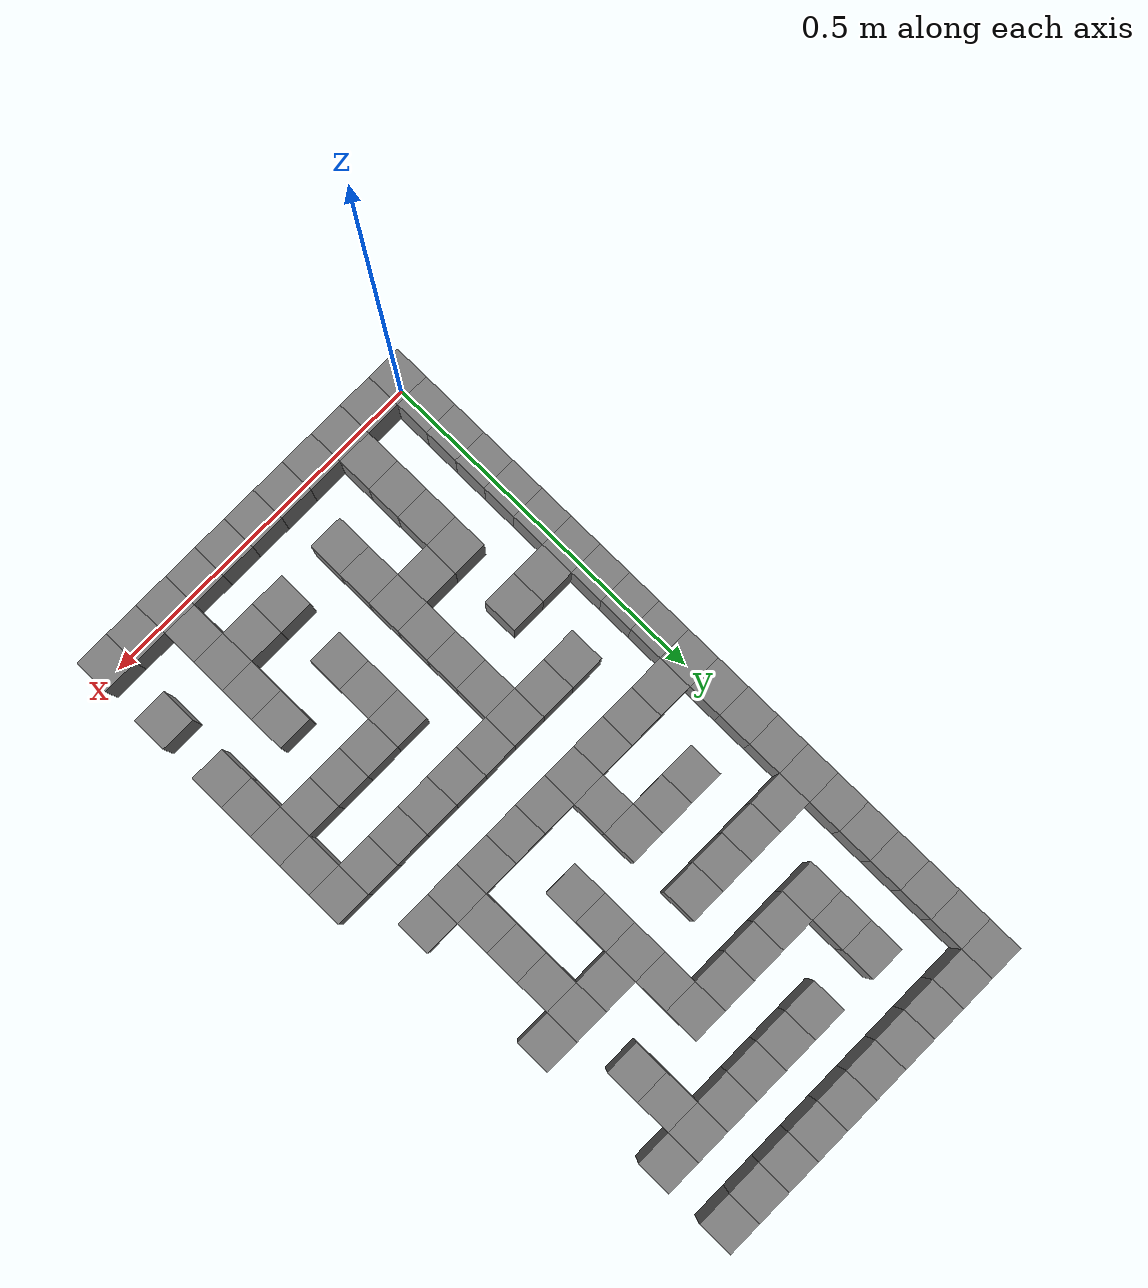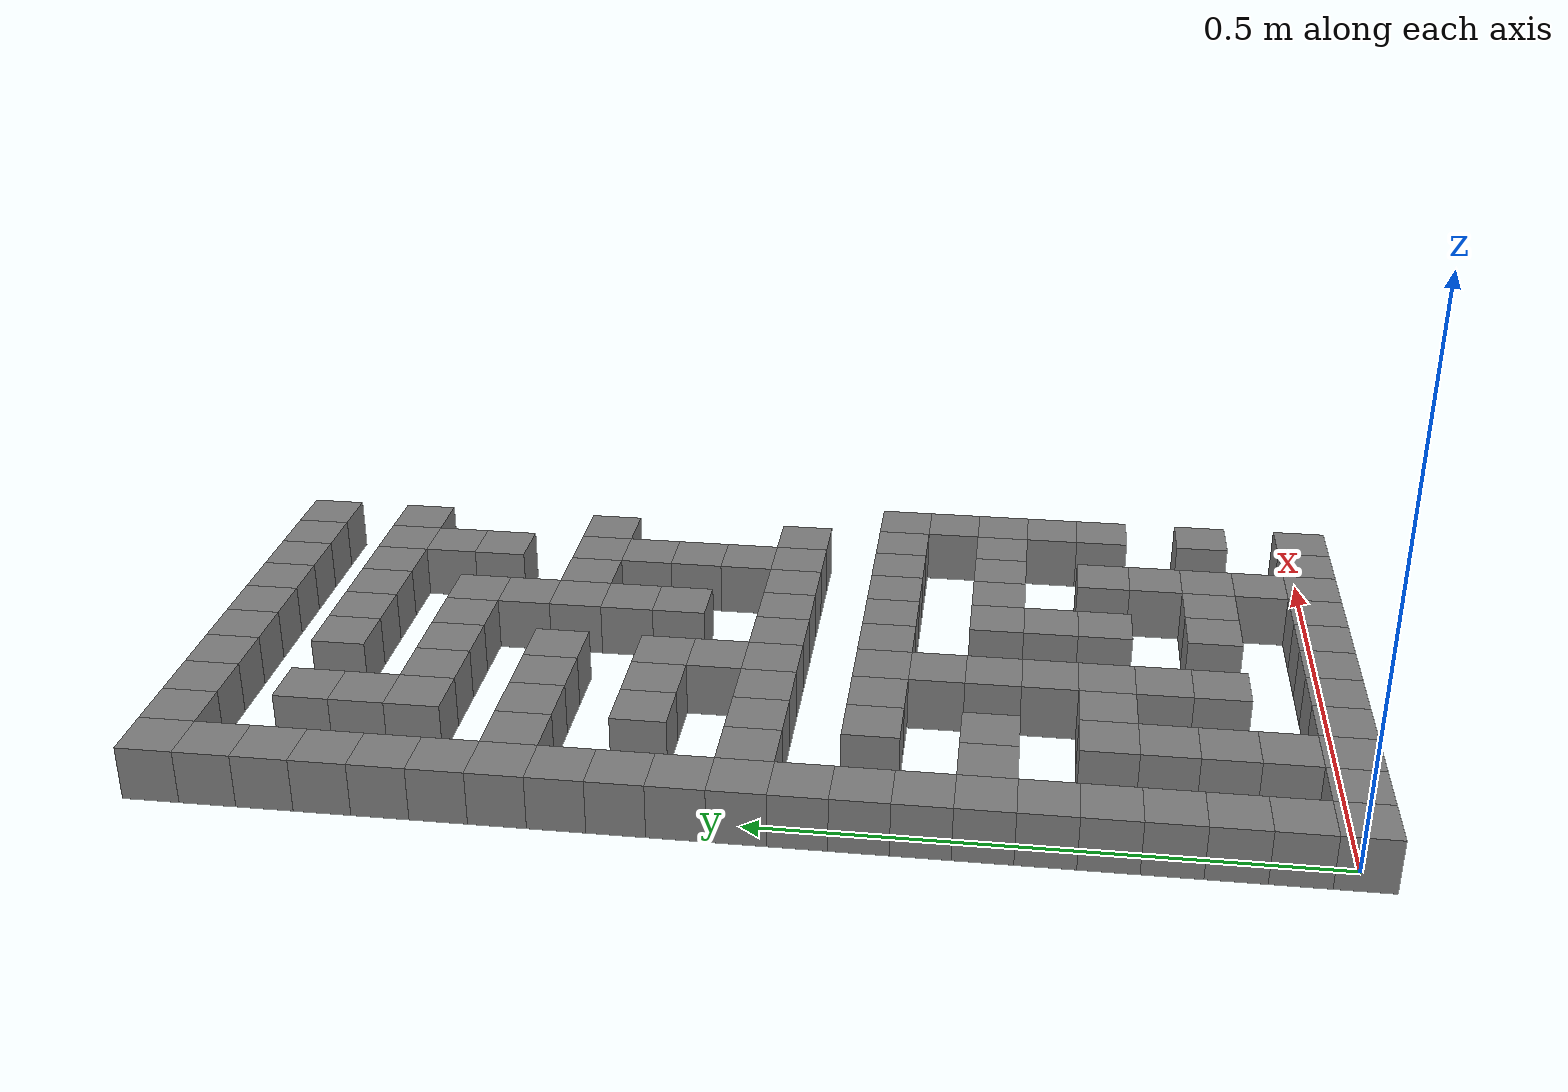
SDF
<sdf version="1.9">
 <model name="maze">
  <static>true</static>
  <link name="wall_0_0">
   <pose>0.0 0.0 0.025 0 0 0</pose>
   <collision name="collision"><geometry><box><size>0.05 0.05 0.05</size></box></geometry></collision>
   <visual name="visual">
    <geometry><box><size>0.05 0.05 0.05</size></box></geometry>
    <material><ambient>0.5 0.5 0.5 1</ambient></material>
   </visual>
  </link>
  <link name="wall_0_1">
   <pose>0.0 0.05 0.025 0 0 0</pose>
   <collision name="collision"><geometry><box><size>0.05 0.05 0.05</size></box></geometry></collision>
   <visual name="visual">
    <geometry><box><size>0.05 0.05 0.05</size></box></geometry>
    <material><ambient>0.5 0.5 0.5 1</ambient></material>
   </visual>
  </link>
  <link name="wall_0_2">
   <pose>0.0 0.1 0.025 0 0 0</pose>
   <collision name="collision"><geometry><box><size>0.05 0.05 0.05</size></box></geometry></collision>
   <visual name="visual">
    <geometry><box><size>0.05 0.05 0.05</size></box></geometry>
    <material><ambient>0.5 0.5 0.5 1</ambient></material>
   </visual>
  </link>
  <link name="wall_0_3">
   <pose>0.0 0.15000000000000002 0.025 0 0 0</pose>
   <collision name="collision"><geometry><box><size>0.05 0.05 0.05</size></box></geometry></collision>
   <visual name="visual">
    <geometry><box><size>0.05 0.05 0.05</size></box></geometry>
    <material><ambient>0.5 0.5 0.5 1</ambient></material>
   </visual>
  </link>
  <link name="wall_0_4">
   <pose>0.0 0.2 0.025 0 0 0</pose>
   <collision name="collision"><geometry><box><size>0.05 0.05 0.05</size></box></geometry></collision>
   <visual name="visual">
    <geometry><box><size>0.05 0.05 0.05</size></box></geometry>
    <material><ambient>0.5 0.5 0.5 1</ambient></material>
   </visual>
  </link>
  <link name="wall_0_5">
   <pose>0.0 0.25 0.025 0 0 0</pose>
   <collision name="collision"><geometry><box><size>0.05 0.05 0.05</size></box></geometry></collision>
   <visual name="visual">
    <geometry><box><size>0.05 0.05 0.05</size></box></geometry>
    <material><ambient>0.5 0.5 0.5 1</ambient></material>
   </visual>
  </link>
  <link name="wall_0_6">
   <pose>0.0 0.30000000000000004 0.025 0 0 0</pose>
   <collision name="collision"><geometry><box><size>0.05 0.05 0.05</size></box></geometry></collision>
   <visual name="visual">
    <geometry><box><size>0.05 0.05 0.05</size></box></geometry>
    <material><ambient>0.5 0.5 0.5 1</ambient></material>
   </visual>
  </link>
  <link name="wall_0_7">
   <pose>0.0 0.35000000000000003 0.025 0 0 0</pose>
   <collision name="collision"><geometry><box><size>0.05 0.05 0.05</size></box></geometry></collision>
   <visual name="visual">
    <geometry><box><size>0.05 0.05 0.05</size></box></geometry>
    <material><ambient>0.5 0.5 0.5 1</ambient></material>
   </visual>
  </link>
  <link name="wall_0_8">
   <pose>0.0 0.4 0.025 0 0 0</pose>
   <collision name="collision"><geometry><box><size>0.05 0.05 0.05</size></box></geometry></collision>
   <visual name="visual">
    <geometry><box><size>0.05 0.05 0.05</size></box></geometry>
    <material><ambient>0.5 0.5 0.5 1</ambient></material>
   </visual>
  </link>
  <link name="wall_0_9">
   <pose>0.0 0.45 0.025 0 0 0</pose>
   <collision name="collision"><geometry><box><size>0.05 0.05 0.05</size></box></geometry></collision>
   <visual name="visual">
    <geometry><box><size>0.05 0.05 0.05</size></box></geometry>
    <material><ambient>0.5 0.5 0.5 1</ambient></material>
   </visual>
  </link>
  <link name="wall_0_10">
   <pose>0.0 0.5 0.025 0 0 0</pose>
   <collision name="collision"><geometry><box><size>0.05 0.05 0.05</size></box></geometry></collision>
   <visual name="visual">
    <geometry><box><size>0.05 0.05 0.05</size></box></geometry>
    <material><ambient>0.5 0.5 0.5 1</ambient></material>
   </visual>
  </link>
  <link name="wall_0_11">
   <pose>0.0 0.55 0.025 0 0 0</pose>
   <collision name="collision"><geometry><box><size>0.05 0.05 0.05</size></box></geometry></collision>
   <visual name="visual">
    <geometry><box><size>0.05 0.05 0.05</size></box></geometry>
    <material><ambient>0.5 0.5 0.5 1</ambient></material>
   </visual>
  </link>
  <link name="wall_0_12">
   <pose>0.0 0.6000000000000001 0.025 0 0 0</pose>
   <collision name="collision"><geometry><box><size>0.05 0.05 0.05</size></box></geometry></collision>
   <visual name="visual">
    <geometry><box><size>0.05 0.05 0.05</size></box></geometry>
    <material><ambient>0.5 0.5 0.5 1</ambient></material>
   </visual>
  </link>
  <link name="wall_0_13">
   <pose>0.0 0.65 0.025 0 0 0</pose>
   <collision name="collision"><geometry><box><size>0.05 0.05 0.05</size></box></geometry></collision>
   <visual name="visual">
    <geometry><box><size>0.05 0.05 0.05</size></box></geometry>
    <material><ambient>0.5 0.5 0.5 1</ambient></material>
   </visual>
  </link>
  <link name="wall_0_14">
   <pose>0.0 0.7000000000000001 0.025 0 0 0</pose>
   <collision name="collision"><geometry><box><size>0.05 0.05 0.05</size></box></geometry></collision>
   <visual name="visual">
    <geometry><box><size>0.05 0.05 0.05</size></box></geometry>
    <material><ambient>0.5 0.5 0.5 1</ambient></material>
   </visual>
  </link>
  <link name="wall_0_15">
   <pose>0.0 0.75 0.025 0 0 0</pose>
   <collision name="collision"><geometry><box><size>0.05 0.05 0.05</size></box></geometry></collision>
   <visual name="visual">
    <geometry><box><size>0.05 0.05 0.05</size></box></geometry>
    <material><ambient>0.5 0.5 0.5 1</ambient></material>
   </visual>
  </link>
  <link name="wall_0_16">
   <pose>0.0 0.8 0.025 0 0 0</pose>
   <collision name="collision"><geometry><box><size>0.05 0.05 0.05</size></box></geometry></collision>
   <visual name="visual">
    <geometry><box><size>0.05 0.05 0.05</size></box></geometry>
    <material><ambient>0.5 0.5 0.5 1</ambient></material>
   </visual>
  </link>
  <link name="wall_0_17">
   <pose>0.0 0.8500000000000001 0.025 0 0 0</pose>
   <collision name="collision"><geometry><box><size>0.05 0.05 0.05</size></box></geometry></collision>
   <visual name="visual">
    <geometry><box><size>0.05 0.05 0.05</size></box></geometry>
    <material><ambient>0.5 0.5 0.5 1</ambient></material>
   </visual>
  </link>
  <link name="wall_0_18">
   <pose>0.0 0.9 0.025 0 0 0</pose>
   <collision name="collision"><geometry><box><size>0.05 0.05 0.05</size></box></geometry></collision>
   <visual name="visual">
    <geometry><box><size>0.05 0.05 0.05</size></box></geometry>
    <material><ambient>0.5 0.5 0.5 1</ambient></material>
   </visual>
  </link>
  <link name="wall_0_19">
   <pose>0.0 0.9500000000000001 0.025 0 0 0</pose>
   <collision name="collision"><geometry><box><size>0.05 0.05 0.05</size></box></geometry></collision>
   <visual name="visual">
    <geometry><box><size>0.05 0.05 0.05</size></box></geometry>
    <material><ambient>0.5 0.5 0.5 1</ambient></material>
   </visual>
  </link>
  <link name="wall_0_20">
   <pose>0.0 1.0 0.025 0 0 0</pose>
   <collision name="collision"><geometry><box><size>0.05 0.05 0.05</size></box></geometry></collision>
   <visual name="visual">
    <geometry><box><size>0.05 0.05 0.05</size></box></geometry>
    <material><ambient>0.5 0.5 0.5 1</ambient></material>
   </visual>
  </link>
  <link name="wall_1_0">
   <pose>0.05 0.0 0.025 0 0 0</pose>
   <collision name="collision"><geometry><box><size>0.05 0.05 0.05</size></box></geometry></collision>
   <visual name="visual">
    <geometry><box><size>0.05 0.05 0.05</size></box></geometry>
    <material><ambient>0.5 0.5 0.5 1</ambient></material>
   </visual>
  </link>
  <link name="wall_1_6">
   <pose>0.05 0.30000000000000004 0.025 0 0 0</pose>
   <collision name="collision"><geometry><box><size>0.05 0.05 0.05</size></box></geometry></collision>
   <visual name="visual">
    <geometry><box><size>0.05 0.05 0.05</size></box></geometry>
    <material><ambient>0.5 0.5 0.5 1</ambient></material>
   </visual>
  </link>
  <link name="wall_1_10">
   <pose>0.05 0.5 0.025 0 0 0</pose>
   <collision name="collision"><geometry><box><size>0.05 0.05 0.05</size></box></geometry></collision>
   <visual name="visual">
    <geometry><box><size>0.05 0.05 0.05</size></box></geometry>
    <material><ambient>0.5 0.5 0.5 1</ambient></material>
   </visual>
  </link>
  <link name="wall_1_14">
   <pose>0.05 0.7000000000000001 0.025 0 0 0</pose>
   <collision name="collision"><geometry><box><size>0.05 0.05 0.05</size></box></geometry></collision>
   <visual name="visual">
    <geometry><box><size>0.05 0.05 0.05</size></box></geometry>
    <material><ambient>0.5 0.5 0.5 1</ambient></material>
   </visual>
  </link>
  <link name="wall_1_20">
   <pose>0.05 1.0 0.025 0 0 0</pose>
   <collision name="collision"><geometry><box><size>0.05 0.05 0.05</size></box></geometry></collision>
   <visual name="visual">
    <geometry><box><size>0.05 0.05 0.05</size></box></geometry>
    <material><ambient>0.5 0.5 0.5 1</ambient></material>
   </visual>
  </link>
  <link name="wall_2_0">
   <pose>0.1 0.0 0.025 0 0 0</pose>
   <collision name="collision"><geometry><box><size>0.05 0.05 0.05</size></box></geometry></collision>
   <visual name="visual">
    <geometry><box><size>0.05 0.05 0.05</size></box></geometry>
    <material><ambient>0.5 0.5 0.5 1</ambient></material>
   </visual>
  </link>
  <link name="wall_2_1">
   <pose>0.1 0.05 0.025 0 0 0</pose>
   <collision name="collision"><geometry><box><size>0.05 0.05 0.05</size></box></geometry></collision>
   <visual name="visual">
    <geometry><box><size>0.05 0.05 0.05</size></box></geometry>
    <material><ambient>0.5 0.5 0.5 1</ambient></material>
   </visual>
  </link>
  <link name="wall_2_2">
   <pose>0.1 0.1 0.025 0 0 0</pose>
   <collision name="collision"><geometry><box><size>0.05 0.05 0.05</size></box></geometry></collision>
   <visual name="visual">
    <geometry><box><size>0.05 0.05 0.05</size></box></geometry>
    <material><ambient>0.5 0.5 0.5 1</ambient></material>
   </visual>
  </link>
  <link name="wall_2_3">
   <pose>0.1 0.15000000000000002 0.025 0 0 0</pose>
   <collision name="collision"><geometry><box><size>0.05 0.05 0.05</size></box></geometry></collision>
   <visual name="visual">
    <geometry><box><size>0.05 0.05 0.05</size></box></geometry>
    <material><ambient>0.5 0.5 0.5 1</ambient></material>
   </visual>
  </link>
  <link name="wall_2_4">
   <pose>0.1 0.2 0.025 0 0 0</pose>
   <collision name="collision"><geometry><box><size>0.05 0.05 0.05</size></box></geometry></collision>
   <visual name="visual">
    <geometry><box><size>0.05 0.05 0.05</size></box></geometry>
    <material><ambient>0.5 0.5 0.5 1</ambient></material>
   </visual>
  </link>
  <link name="wall_2_6">
   <pose>0.1 0.30000000000000004 0.025 0 0 0</pose>
   <collision name="collision"><geometry><box><size>0.05 0.05 0.05</size></box></geometry></collision>
   <visual name="visual">
    <geometry><box><size>0.05 0.05 0.05</size></box></geometry>
    <material><ambient>0.5 0.5 0.5 1</ambient></material>
   </visual>
  </link>
  <link name="wall_2_8">
   <pose>0.1 0.4 0.025 0 0 0</pose>
   <collision name="collision"><geometry><box><size>0.05 0.05 0.05</size></box></geometry></collision>
   <visual name="visual">
    <geometry><box><size>0.05 0.05 0.05</size></box></geometry>
    <material><ambient>0.5 0.5 0.5 1</ambient></material>
   </visual>
  </link>
  <link name="wall_2_10">
   <pose>0.1 0.5 0.025 0 0 0</pose>
   <collision name="collision"><geometry><box><size>0.05 0.05 0.05</size></box></geometry></collision>
   <visual name="visual">
    <geometry><box><size>0.05 0.05 0.05</size></box></geometry>
    <material><ambient>0.5 0.5 0.5 1</ambient></material>
   </visual>
  </link>
  <link name="wall_2_12">
   <pose>0.1 0.6000000000000001 0.025 0 0 0</pose>
   <collision name="collision"><geometry><box><size>0.05 0.05 0.05</size></box></geometry></collision>
   <visual name="visual">
    <geometry><box><size>0.05 0.05 0.05</size></box></geometry>
    <material><ambient>0.5 0.5 0.5 1</ambient></material>
   </visual>
  </link>
  <link name="wall_2_14">
   <pose>0.1 0.7000000000000001 0.025 0 0 0</pose>
   <collision name="collision"><geometry><box><size>0.05 0.05 0.05</size></box></geometry></collision>
   <visual name="visual">
    <geometry><box><size>0.05 0.05 0.05</size></box></geometry>
    <material><ambient>0.5 0.5 0.5 1</ambient></material>
   </visual>
  </link>
  <link name="wall_2_16">
   <pose>0.1 0.8 0.025 0 0 0</pose>
   <collision name="collision"><geometry><box><size>0.05 0.05 0.05</size></box></geometry></collision>
   <visual name="visual">
    <geometry><box><size>0.05 0.05 0.05</size></box></geometry>
    <material><ambient>0.5 0.5 0.5 1</ambient></material>
   </visual>
  </link>
  <link name="wall_2_17">
   <pose>0.1 0.8500000000000001 0.025 0 0 0</pose>
   <collision name="collision"><geometry><box><size>0.05 0.05 0.05</size></box></geometry></collision>
   <visual name="visual">
    <geometry><box><size>0.05 0.05 0.05</size></box></geometry>
    <material><ambient>0.5 0.5 0.5 1</ambient></material>
   </visual>
  </link>
  <link name="wall_2_18">
   <pose>0.1 0.9 0.025 0 0 0</pose>
   <collision name="collision"><geometry><box><size>0.05 0.05 0.05</size></box></geometry></collision>
   <visual name="visual">
    <geometry><box><size>0.05 0.05 0.05</size></box></geometry>
    <material><ambient>0.5 0.5 0.5 1</ambient></material>
   </visual>
  </link>
  <link name="wall_2_20">
   <pose>0.1 1.0 0.025 0 0 0</pose>
   <collision name="collision"><geometry><box><size>0.05 0.05 0.05</size></box></geometry></collision>
   <visual name="visual">
    <geometry><box><size>0.05 0.05 0.05</size></box></geometry>
    <material><ambient>0.5 0.5 0.5 1</ambient></material>
   </visual>
  </link>
  <link name="wall_3_0">
   <pose>0.15000000000000002 0.0 0.025 0 0 0</pose>
   <collision name="collision"><geometry><box><size>0.05 0.05 0.05</size></box></geometry></collision>
   <visual name="visual">
    <geometry><box><size>0.05 0.05 0.05</size></box></geometry>
    <material><ambient>0.5 0.5 0.5 1</ambient></material>
   </visual>
  </link>
  <link name="wall_3_4">
   <pose>0.15000000000000002 0.2 0.025 0 0 0</pose>
   <collision name="collision"><geometry><box><size>0.05 0.05 0.05</size></box></geometry></collision>
   <visual name="visual">
    <geometry><box><size>0.05 0.05 0.05</size></box></geometry>
    <material><ambient>0.5 0.5 0.5 1</ambient></material>
   </visual>
  </link>
  <link name="wall_3_8">
   <pose>0.15000000000000002 0.4 0.025 0 0 0</pose>
   <collision name="collision"><geometry><box><size>0.05 0.05 0.05</size></box></geometry></collision>
   <visual name="visual">
    <geometry><box><size>0.05 0.05 0.05</size></box></geometry>
    <material><ambient>0.5 0.5 0.5 1</ambient></material>
   </visual>
  </link>
  <link name="wall_3_10">
   <pose>0.15000000000000002 0.5 0.025 0 0 0</pose>
   <collision name="collision"><geometry><box><size>0.05 0.05 0.05</size></box></geometry></collision>
   <visual name="visual">
    <geometry><box><size>0.05 0.05 0.05</size></box></geometry>
    <material><ambient>0.5 0.5 0.5 1</ambient></material>
   </visual>
  </link>
  <link name="wall_3_12">
   <pose>0.15000000000000002 0.6000000000000001 0.025 0 0 0</pose>
   <collision name="collision"><geometry><box><size>0.05 0.05 0.05</size></box></geometry></collision>
   <visual name="visual">
    <geometry><box><size>0.05 0.05 0.05</size></box></geometry>
    <material><ambient>0.5 0.5 0.5 1</ambient></material>
   </visual>
  </link>
  <link name="wall_3_14">
   <pose>0.15000000000000002 0.7000000000000001 0.025 0 0 0</pose>
   <collision name="collision"><geometry><box><size>0.05 0.05 0.05</size></box></geometry></collision>
   <visual name="visual">
    <geometry><box><size>0.05 0.05 0.05</size></box></geometry>
    <material><ambient>0.5 0.5 0.5 1</ambient></material>
   </visual>
  </link>
  <link name="wall_3_16">
   <pose>0.15000000000000002 0.8 0.025 0 0 0</pose>
   <collision name="collision"><geometry><box><size>0.05 0.05 0.05</size></box></geometry></collision>
   <visual name="visual">
    <geometry><box><size>0.05 0.05 0.05</size></box></geometry>
    <material><ambient>0.5 0.5 0.5 1</ambient></material>
   </visual>
  </link>
  <link name="wall_3_20">
   <pose>0.15000000000000002 1.0 0.025 0 0 0</pose>
   <collision name="collision"><geometry><box><size>0.05 0.05 0.05</size></box></geometry></collision>
   <visual name="visual">
    <geometry><box><size>0.05 0.05 0.05</size></box></geometry>
    <material><ambient>0.5 0.5 0.5 1</ambient></material>
   </visual>
  </link>
  <link name="wall_4_0">
   <pose>0.2 0.0 0.025 0 0 0</pose>
   <collision name="collision"><geometry><box><size>0.05 0.05 0.05</size></box></geometry></collision>
   <visual name="visual">
    <geometry><box><size>0.05 0.05 0.05</size></box></geometry>
    <material><ambient>0.5 0.5 0.5 1</ambient></material>
   </visual>
  </link>
  <link name="wall_4_2">
   <pose>0.2 0.1 0.025 0 0 0</pose>
   <collision name="collision"><geometry><box><size>0.05 0.05 0.05</size></box></geometry></collision>
   <visual name="visual">
    <geometry><box><size>0.05 0.05 0.05</size></box></geometry>
    <material><ambient>0.5 0.5 0.5 1</ambient></material>
   </visual>
  </link>
  <link name="wall_4_3">
   <pose>0.2 0.15000000000000002 0.025 0 0 0</pose>
   <collision name="collision"><geometry><box><size>0.05 0.05 0.05</size></box></geometry></collision>
   <visual name="visual">
    <geometry><box><size>0.05 0.05 0.05</size></box></geometry>
    <material><ambient>0.5 0.5 0.5 1</ambient></material>
   </visual>
  </link>
  <link name="wall_4_4">
   <pose>0.2 0.2 0.025 0 0 0</pose>
   <collision name="collision"><geometry><box><size>0.05 0.05 0.05</size></box></geometry></collision>
   <visual name="visual">
    <geometry><box><size>0.05 0.05 0.05</size></box></geometry>
    <material><ambient>0.5 0.5 0.5 1</ambient></material>
   </visual>
  </link>
  <link name="wall_4_5">
   <pose>0.2 0.25 0.025 0 0 0</pose>
   <collision name="collision"><geometry><box><size>0.05 0.05 0.05</size></box></geometry></collision>
   <visual name="visual">
    <geometry><box><size>0.05 0.05 0.05</size></box></geometry>
    <material><ambient>0.5 0.5 0.5 1</ambient></material>
   </visual>
  </link>
  <link name="wall_4_6">
   <pose>0.2 0.30000000000000004 0.025 0 0 0</pose>
   <collision name="collision"><geometry><box><size>0.05 0.05 0.05</size></box></geometry></collision>
   <visual name="visual">
    <geometry><box><size>0.05 0.05 0.05</size></box></geometry>
    <material><ambient>0.5 0.5 0.5 1</ambient></material>
   </visual>
  </link>
  <link name="wall_4_7">
   <pose>0.2 0.35000000000000003 0.025 0 0 0</pose>
   <collision name="collision"><geometry><box><size>0.05 0.05 0.05</size></box></geometry></collision>
   <visual name="visual">
    <geometry><box><size>0.05 0.05 0.05</size></box></geometry>
    <material><ambient>0.5 0.5 0.5 1</ambient></material>
   </visual>
  </link>
  <link name="wall_4_8">
   <pose>0.2 0.4 0.025 0 0 0</pose>
   <collision name="collision"><geometry><box><size>0.05 0.05 0.05</size></box></geometry></collision>
   <visual name="visual">
    <geometry><box><size>0.05 0.05 0.05</size></box></geometry>
    <material><ambient>0.5 0.5 0.5 1</ambient></material>
   </visual>
  </link>
  <link name="wall_4_10">
   <pose>0.2 0.5 0.025 0 0 0</pose>
   <collision name="collision"><geometry><box><size>0.05 0.05 0.05</size></box></geometry></collision>
   <visual name="visual">
    <geometry><box><size>0.05 0.05 0.05</size></box></geometry>
    <material><ambient>0.5 0.5 0.5 1</ambient></material>
   </visual>
  </link>
  <link name="wall_4_11">
   <pose>0.2 0.55 0.025 0 0 0</pose>
   <collision name="collision"><geometry><box><size>0.05 0.05 0.05</size></box></geometry></collision>
   <visual name="visual">
    <geometry><box><size>0.05 0.05 0.05</size></box></geometry>
    <material><ambient>0.5 0.5 0.5 1</ambient></material>
   </visual>
  </link>
  <link name="wall_4_12">
   <pose>0.2 0.6000000000000001 0.025 0 0 0</pose>
   <collision name="collision"><geometry><box><size>0.05 0.05 0.05</size></box></geometry></collision>
   <visual name="visual">
    <geometry><box><size>0.05 0.05 0.05</size></box></geometry>
    <material><ambient>0.5 0.5 0.5 1</ambient></material>
   </visual>
  </link>
  <link name="wall_4_14">
   <pose>0.2 0.7000000000000001 0.025 0 0 0</pose>
   <collision name="collision"><geometry><box><size>0.05 0.05 0.05</size></box></geometry></collision>
   <visual name="visual">
    <geometry><box><size>0.05 0.05 0.05</size></box></geometry>
    <material><ambient>0.5 0.5 0.5 1</ambient></material>
   </visual>
  </link>
  <link name="wall_4_16">
   <pose>0.2 0.8 0.025 0 0 0</pose>
   <collision name="collision"><geometry><box><size>0.05 0.05 0.05</size></box></geometry></collision>
   <visual name="visual">
    <geometry><box><size>0.05 0.05 0.05</size></box></geometry>
    <material><ambient>0.5 0.5 0.5 1</ambient></material>
   </visual>
  </link>
  <link name="wall_4_18">
   <pose>0.2 0.9 0.025 0 0 0</pose>
   <collision name="collision"><geometry><box><size>0.05 0.05 0.05</size></box></geometry></collision>
   <visual name="visual">
    <geometry><box><size>0.05 0.05 0.05</size></box></geometry>
    <material><ambient>0.5 0.5 0.5 1</ambient></material>
   </visual>
  </link>
  <link name="wall_4_20">
   <pose>0.2 1.0 0.025 0 0 0</pose>
   <collision name="collision"><geometry><box><size>0.05 0.05 0.05</size></box></geometry></collision>
   <visual name="visual">
    <geometry><box><size>0.05 0.05 0.05</size></box></geometry>
    <material><ambient>0.5 0.5 0.5 1</ambient></material>
   </visual>
  </link>
  <link name="wall_5_0">
   <pose>0.25 0.0 0.025 0 0 0</pose>
   <collision name="collision"><geometry><box><size>0.05 0.05 0.05</size></box></geometry></collision>
   <visual name="visual">
    <geometry><box><size>0.05 0.05 0.05</size></box></geometry>
    <material><ambient>0.5 0.5 0.5 1</ambient></material>
   </visual>
  </link>
  <link name="wall_5_8">
   <pose>0.25 0.4 0.025 0 0 0</pose>
   <collision name="collision"><geometry><box><size>0.05 0.05 0.05</size></box></geometry></collision>
   <visual name="visual">
    <geometry><box><size>0.05 0.05 0.05</size></box></geometry>
    <material><ambient>0.5 0.5 0.5 1</ambient></material>
   </visual>
  </link>
  <link name="wall_5_10">
   <pose>0.25 0.5 0.025 0 0 0</pose>
   <collision name="collision"><geometry><box><size>0.05 0.05 0.05</size></box></geometry></collision>
   <visual name="visual">
    <geometry><box><size>0.05 0.05 0.05</size></box></geometry>
    <material><ambient>0.5 0.5 0.5 1</ambient></material>
   </visual>
  </link>
  <link name="wall_5_16">
   <pose>0.25 0.8 0.025 0 0 0</pose>
   <collision name="collision"><geometry><box><size>0.05 0.05 0.05</size></box></geometry></collision>
   <visual name="visual">
    <geometry><box><size>0.05 0.05 0.05</size></box></geometry>
    <material><ambient>0.5 0.5 0.5 1</ambient></material>
   </visual>
  </link>
  <link name="wall_5_18">
   <pose>0.25 0.9 0.025 0 0 0</pose>
   <collision name="collision"><geometry><box><size>0.05 0.05 0.05</size></box></geometry></collision>
   <visual name="visual">
    <geometry><box><size>0.05 0.05 0.05</size></box></geometry>
    <material><ambient>0.5 0.5 0.5 1</ambient></material>
   </visual>
  </link>
  <link name="wall_5_20">
   <pose>0.25 1.0 0.025 0 0 0</pose>
   <collision name="collision"><geometry><box><size>0.05 0.05 0.05</size></box></geometry></collision>
   <visual name="visual">
    <geometry><box><size>0.05 0.05 0.05</size></box></geometry>
    <material><ambient>0.5 0.5 0.5 1</ambient></material>
   </visual>
  </link>
  <link name="wall_6_0">
   <pose>0.30000000000000004 0.0 0.025 0 0 0</pose>
   <collision name="collision"><geometry><box><size>0.05 0.05 0.05</size></box></geometry></collision>
   <visual name="visual">
    <geometry><box><size>0.05 0.05 0.05</size></box></geometry>
    <material><ambient>0.5 0.5 0.5 1</ambient></material>
   </visual>
  </link>
  <link name="wall_6_2">
   <pose>0.30000000000000004 0.1 0.025 0 0 0</pose>
   <collision name="collision"><geometry><box><size>0.05 0.05 0.05</size></box></geometry></collision>
   <visual name="visual">
    <geometry><box><size>0.05 0.05 0.05</size></box></geometry>
    <material><ambient>0.5 0.5 0.5 1</ambient></material>
   </visual>
  </link>
  <link name="wall_6_4">
   <pose>0.30000000000000004 0.2 0.025 0 0 0</pose>
   <collision name="collision"><geometry><box><size>0.05 0.05 0.05</size></box></geometry></collision>
   <visual name="visual">
    <geometry><box><size>0.05 0.05 0.05</size></box></geometry>
    <material><ambient>0.5 0.5 0.5 1</ambient></material>
   </visual>
  </link>
  <link name="wall_6_5">
   <pose>0.30000000000000004 0.25 0.025 0 0 0</pose>
   <collision name="collision"><geometry><box><size>0.05 0.05 0.05</size></box></geometry></collision>
   <visual name="visual">
    <geometry><box><size>0.05 0.05 0.05</size></box></geometry>
    <material><ambient>0.5 0.5 0.5 1</ambient></material>
   </visual>
  </link>
  <link name="wall_6_6">
   <pose>0.30000000000000004 0.30000000000000004 0.025 0 0 0</pose>
   <collision name="collision"><geometry><box><size>0.05 0.05 0.05</size></box></geometry></collision>
   <visual name="visual">
    <geometry><box><size>0.05 0.05 0.05</size></box></geometry>
    <material><ambient>0.5 0.5 0.5 1</ambient></material>
   </visual>
  </link>
  <link name="wall_6_8">
   <pose>0.30000000000000004 0.4 0.025 0 0 0</pose>
   <collision name="collision"><geometry><box><size>0.05 0.05 0.05</size></box></geometry></collision>
   <visual name="visual">
    <geometry><box><size>0.05 0.05 0.05</size></box></geometry>
    <material><ambient>0.5 0.5 0.5 1</ambient></material>
   </visual>
  </link>
  <link name="wall_6_10">
   <pose>0.30000000000000004 0.5 0.025 0 0 0</pose>
   <collision name="collision"><geometry><box><size>0.05 0.05 0.05</size></box></geometry></collision>
   <visual name="visual">
    <geometry><box><size>0.05 0.05 0.05</size></box></geometry>
    <material><ambient>0.5 0.5 0.5 1</ambient></material>
   </visual>
  </link>
  <link name="wall_6_12">
   <pose>0.30000000000000004 0.6000000000000001 0.025 0 0 0</pose>
   <collision name="collision"><geometry><box><size>0.05 0.05 0.05</size></box></geometry></collision>
   <visual name="visual">
    <geometry><box><size>0.05 0.05 0.05</size></box></geometry>
    <material><ambient>0.5 0.5 0.5 1</ambient></material>
   </visual>
  </link>
  <link name="wall_6_13">
   <pose>0.30000000000000004 0.65 0.025 0 0 0</pose>
   <collision name="collision"><geometry><box><size>0.05 0.05 0.05</size></box></geometry></collision>
   <visual name="visual">
    <geometry><box><size>0.05 0.05 0.05</size></box></geometry>
    <material><ambient>0.5 0.5 0.5 1</ambient></material>
   </visual>
  </link>
  <link name="wall_6_14">
   <pose>0.30000000000000004 0.7000000000000001 0.025 0 0 0</pose>
   <collision name="collision"><geometry><box><size>0.05 0.05 0.05</size></box></geometry></collision>
   <visual name="visual">
    <geometry><box><size>0.05 0.05 0.05</size></box></geometry>
    <material><ambient>0.5 0.5 0.5 1</ambient></material>
   </visual>
  </link>
  <link name="wall_6_15">
   <pose>0.30000000000000004 0.75 0.025 0 0 0</pose>
   <collision name="collision"><geometry><box><size>0.05 0.05 0.05</size></box></geometry></collision>
   <visual name="visual">
    <geometry><box><size>0.05 0.05 0.05</size></box></geometry>
    <material><ambient>0.5 0.5 0.5 1</ambient></material>
   </visual>
  </link>
  <link name="wall_6_16">
   <pose>0.30000000000000004 0.8 0.025 0 0 0</pose>
   <collision name="collision"><geometry><box><size>0.05 0.05 0.05</size></box></geometry></collision>
   <visual name="visual">
    <geometry><box><size>0.05 0.05 0.05</size></box></geometry>
    <material><ambient>0.5 0.5 0.5 1</ambient></material>
   </visual>
  </link>
  <link name="wall_6_18">
   <pose>0.30000000000000004 0.9 0.025 0 0 0</pose>
   <collision name="collision"><geometry><box><size>0.05 0.05 0.05</size></box></geometry></collision>
   <visual name="visual">
    <geometry><box><size>0.05 0.05 0.05</size></box></geometry>
    <material><ambient>0.5 0.5 0.5 1</ambient></material>
   </visual>
  </link>
  <link name="wall_6_20">
   <pose>0.30000000000000004 1.0 0.025 0 0 0</pose>
   <collision name="collision"><geometry><box><size>0.05 0.05 0.05</size></box></geometry></collision>
   <visual name="visual">
    <geometry><box><size>0.05 0.05 0.05</size></box></geometry>
    <material><ambient>0.5 0.5 0.5 1</ambient></material>
   </visual>
  </link>
  <link name="wall_7_0">
   <pose>0.35000000000000003 0.0 0.025 0 0 0</pose>
   <collision name="collision"><geometry><box><size>0.05 0.05 0.05</size></box></geometry></collision>
   <visual name="visual">
    <geometry><box><size>0.05 0.05 0.05</size></box></geometry>
    <material><ambient>0.5 0.5 0.5 1</ambient></material>
   </visual>
  </link>
  <link name="wall_7_2">
   <pose>0.35000000000000003 0.1 0.025 0 0 0</pose>
   <collision name="collision"><geometry><box><size>0.05 0.05 0.05</size></box></geometry></collision>
   <visual name="visual">
    <geometry><box><size>0.05 0.05 0.05</size></box></geometry>
    <material><ambient>0.5 0.5 0.5 1</ambient></material>
   </visual>
  </link>
  <link name="wall_7_6">
   <pose>0.35000000000000003 0.30000000000000004 0.025 0 0 0</pose>
   <collision name="collision"><geometry><box><size>0.05 0.05 0.05</size></box></geometry></collision>
   <visual name="visual">
    <geometry><box><size>0.05 0.05 0.05</size></box></geometry>
    <material><ambient>0.5 0.5 0.5 1</ambient></material>
   </visual>
  </link>
  <link name="wall_7_8">
   <pose>0.35000000000000003 0.4 0.025 0 0 0</pose>
   <collision name="collision"><geometry><box><size>0.05 0.05 0.05</size></box></geometry></collision>
   <visual name="visual">
    <geometry><box><size>0.05 0.05 0.05</size></box></geometry>
    <material><ambient>0.5 0.5 0.5 1</ambient></material>
   </visual>
  </link>
  <link name="wall_7_10">
   <pose>0.35000000000000003 0.5 0.025 0 0 0</pose>
   <collision name="collision"><geometry><box><size>0.05 0.05 0.05</size></box></geometry></collision>
   <visual name="visual">
    <geometry><box><size>0.05 0.05 0.05</size></box></geometry>
    <material><ambient>0.5 0.5 0.5 1</ambient></material>
   </visual>
  </link>
  <link name="wall_7_14">
   <pose>0.35000000000000003 0.7000000000000001 0.025 0 0 0</pose>
   <collision name="collision"><geometry><box><size>0.05 0.05 0.05</size></box></geometry></collision>
   <visual name="visual">
    <geometry><box><size>0.05 0.05 0.05</size></box></geometry>
    <material><ambient>0.5 0.5 0.5 1</ambient></material>
   </visual>
  </link>
  <link name="wall_7_18">
   <pose>0.35000000000000003 0.9 0.025 0 0 0</pose>
   <collision name="collision"><geometry><box><size>0.05 0.05 0.05</size></box></geometry></collision>
   <visual name="visual">
    <geometry><box><size>0.05 0.05 0.05</size></box></geometry>
    <material><ambient>0.5 0.5 0.5 1</ambient></material>
   </visual>
  </link>
  <link name="wall_7_20">
   <pose>0.35000000000000003 1.0 0.025 0 0 0</pose>
   <collision name="collision"><geometry><box><size>0.05 0.05 0.05</size></box></geometry></collision>
   <visual name="visual">
    <geometry><box><size>0.05 0.05 0.05</size></box></geometry>
    <material><ambient>0.5 0.5 0.5 1</ambient></material>
   </visual>
  </link>
  <link name="wall_8_0">
   <pose>0.4 0.0 0.025 0 0 0</pose>
   <collision name="collision"><geometry><box><size>0.05 0.05 0.05</size></box></geometry></collision>
   <visual name="visual">
    <geometry><box><size>0.05 0.05 0.05</size></box></geometry>
    <material><ambient>0.5 0.5 0.5 1</ambient></material>
   </visual>
  </link>
  <link name="wall_8_1">
   <pose>0.4 0.05 0.025 0 0 0</pose>
   <collision name="collision"><geometry><box><size>0.05 0.05 0.05</size></box></geometry></collision>
   <visual name="visual">
    <geometry><box><size>0.05 0.05 0.05</size></box></geometry>
    <material><ambient>0.5 0.5 0.5 1</ambient></material>
   </visual>
  </link>
  <link name="wall_8_2">
   <pose>0.4 0.1 0.025 0 0 0</pose>
   <collision name="collision"><geometry><box><size>0.05 0.05 0.05</size></box></geometry></collision>
   <visual name="visual">
    <geometry><box><size>0.05 0.05 0.05</size></box></geometry>
    <material><ambient>0.5 0.5 0.5 1</ambient></material>
   </visual>
  </link>
  <link name="wall_8_3">
   <pose>0.4 0.15000000000000002 0.025 0 0 0</pose>
   <collision name="collision"><geometry><box><size>0.05 0.05 0.05</size></box></geometry></collision>
   <visual name="visual">
    <geometry><box><size>0.05 0.05 0.05</size></box></geometry>
    <material><ambient>0.5 0.5 0.5 1</ambient></material>
   </visual>
  </link>
  <link name="wall_8_4">
   <pose>0.4 0.2 0.025 0 0 0</pose>
   <collision name="collision"><geometry><box><size>0.05 0.05 0.05</size></box></geometry></collision>
   <visual name="visual">
    <geometry><box><size>0.05 0.05 0.05</size></box></geometry>
    <material><ambient>0.5 0.5 0.5 1</ambient></material>
   </visual>
  </link>
  <link name="wall_8_6">
   <pose>0.4 0.30000000000000004 0.025 0 0 0</pose>
   <collision name="collision"><geometry><box><size>0.05 0.05 0.05</size></box></geometry></collision>
   <visual name="visual">
    <geometry><box><size>0.05 0.05 0.05</size></box></geometry>
    <material><ambient>0.5 0.5 0.5 1</ambient></material>
   </visual>
  </link>
  <link name="wall_8_8">
   <pose>0.4 0.4 0.025 0 0 0</pose>
   <collision name="collision"><geometry><box><size>0.05 0.05 0.05</size></box></geometry></collision>
   <visual name="visual">
    <geometry><box><size>0.05 0.05 0.05</size></box></geometry>
    <material><ambient>0.5 0.5 0.5 1</ambient></material>
   </visual>
  </link>
  <link name="wall_8_10">
   <pose>0.4 0.5 0.025 0 0 0</pose>
   <collision name="collision"><geometry><box><size>0.05 0.05 0.05</size></box></geometry></collision>
   <visual name="visual">
    <geometry><box><size>0.05 0.05 0.05</size></box></geometry>
    <material><ambient>0.5 0.5 0.5 1</ambient></material>
   </visual>
  </link>
  <link name="wall_8_11">
   <pose>0.4 0.55 0.025 0 0 0</pose>
   <collision name="collision"><geometry><box><size>0.05 0.05 0.05</size></box></geometry></collision>
   <visual name="visual">
    <geometry><box><size>0.05 0.05 0.05</size></box></geometry>
    <material><ambient>0.5 0.5 0.5 1</ambient></material>
   </visual>
  </link>
  <link name="wall_8_12">
   <pose>0.4 0.6000000000000001 0.025 0 0 0</pose>
   <collision name="collision"><geometry><box><size>0.05 0.05 0.05</size></box></geometry></collision>
   <visual name="visual">
    <geometry><box><size>0.05 0.05 0.05</size></box></geometry>
    <material><ambient>0.5 0.5 0.5 1</ambient></material>
   </visual>
  </link>
  <link name="wall_8_13">
   <pose>0.4 0.65 0.025 0 0 0</pose>
   <collision name="collision"><geometry><box><size>0.05 0.05 0.05</size></box></geometry></collision>
   <visual name="visual">
    <geometry><box><size>0.05 0.05 0.05</size></box></geometry>
    <material><ambient>0.5 0.5 0.5 1</ambient></material>
   </visual>
  </link>
  <link name="wall_8_14">
   <pose>0.4 0.7000000000000001 0.025 0 0 0</pose>
   <collision name="collision"><geometry><box><size>0.05 0.05 0.05</size></box></geometry></collision>
   <visual name="visual">
    <geometry><box><size>0.05 0.05 0.05</size></box></geometry>
    <material><ambient>0.5 0.5 0.5 1</ambient></material>
   </visual>
  </link>
  <link name="wall_8_16">
   <pose>0.4 0.8 0.025 0 0 0</pose>
   <collision name="collision"><geometry><box><size>0.05 0.05 0.05</size></box></geometry></collision>
   <visual name="visual">
    <geometry><box><size>0.05 0.05 0.05</size></box></geometry>
    <material><ambient>0.5 0.5 0.5 1</ambient></material>
   </visual>
  </link>
  <link name="wall_8_17">
   <pose>0.4 0.8500000000000001 0.025 0 0 0</pose>
   <collision name="collision"><geometry><box><size>0.05 0.05 0.05</size></box></geometry></collision>
   <visual name="visual">
    <geometry><box><size>0.05 0.05 0.05</size></box></geometry>
    <material><ambient>0.5 0.5 0.5 1</ambient></material>
   </visual>
  </link>
  <link name="wall_8_18">
   <pose>0.4 0.9 0.025 0 0 0</pose>
   <collision name="collision"><geometry><box><size>0.05 0.05 0.05</size></box></geometry></collision>
   <visual name="visual">
    <geometry><box><size>0.05 0.05 0.05</size></box></geometry>
    <material><ambient>0.5 0.5 0.5 1</ambient></material>
   </visual>
  </link>
  <link name="wall_8_20">
   <pose>0.4 1.0 0.025 0 0 0</pose>
   <collision name="collision"><geometry><box><size>0.05 0.05 0.05</size></box></geometry></collision>
   <visual name="visual">
    <geometry><box><size>0.05 0.05 0.05</size></box></geometry>
    <material><ambient>0.5 0.5 0.5 1</ambient></material>
   </visual>
  </link>
  <link name="wall_9_0">
   <pose>0.45 0.0 0.025 0 0 0</pose>
   <collision name="collision"><geometry><box><size>0.05 0.05 0.05</size></box></geometry></collision>
   <visual name="visual">
    <geometry><box><size>0.05 0.05 0.05</size></box></geometry>
    <material><ambient>0.5 0.5 0.5 1</ambient></material>
   </visual>
  </link>
  <link name="wall_9_6">
   <pose>0.45 0.30000000000000004 0.025 0 0 0</pose>
   <collision name="collision"><geometry><box><size>0.05 0.05 0.05</size></box></geometry></collision>
   <visual name="visual">
    <geometry><box><size>0.05 0.05 0.05</size></box></geometry>
    <material><ambient>0.5 0.5 0.5 1</ambient></material>
   </visual>
  </link>
  <link name="wall_9_8">
   <pose>0.45 0.4 0.025 0 0 0</pose>
   <collision name="collision"><geometry><box><size>0.05 0.05 0.05</size></box></geometry></collision>
   <visual name="visual">
    <geometry><box><size>0.05 0.05 0.05</size></box></geometry>
    <material><ambient>0.5 0.5 0.5 1</ambient></material>
   </visual>
  </link>
  <link name="wall_9_10">
   <pose>0.45 0.5 0.025 0 0 0</pose>
   <collision name="collision"><geometry><box><size>0.05 0.05 0.05</size></box></geometry></collision>
   <visual name="visual">
    <geometry><box><size>0.05 0.05 0.05</size></box></geometry>
    <material><ambient>0.5 0.5 0.5 1</ambient></material>
   </visual>
  </link>
  <link name="wall_9_14">
   <pose>0.45 0.7000000000000001 0.025 0 0 0</pose>
   <collision name="collision"><geometry><box><size>0.05 0.05 0.05</size></box></geometry></collision>
   <visual name="visual">
    <geometry><box><size>0.05 0.05 0.05</size></box></geometry>
    <material><ambient>0.5 0.5 0.5 1</ambient></material>
   </visual>
  </link>
  <link name="wall_9_18">
   <pose>0.45 0.9 0.025 0 0 0</pose>
   <collision name="collision"><geometry><box><size>0.05 0.05 0.05</size></box></geometry></collision>
   <visual name="visual">
    <geometry><box><size>0.05 0.05 0.05</size></box></geometry>
    <material><ambient>0.5 0.5 0.5 1</ambient></material>
   </visual>
  </link>
  <link name="wall_9_20">
   <pose>0.45 1.0 0.025 0 0 0</pose>
   <collision name="collision"><geometry><box><size>0.05 0.05 0.05</size></box></geometry></collision>
   <visual name="visual">
    <geometry><box><size>0.05 0.05 0.05</size></box></geometry>
    <material><ambient>0.5 0.5 0.5 1</ambient></material>
   </visual>
  </link>
  <link name="wall_10_0">
   <pose>0.5 0.0 0.025 0 0 0</pose>
   <collision name="collision"><geometry><box><size>0.05 0.05 0.05</size></box></geometry></collision>
   <visual name="visual">
    <geometry><box><size>0.05 0.05 0.05</size></box></geometry>
    <material><ambient>0.5 0.5 0.5 1</ambient></material>
   </visual>
  </link>
  <link name="wall_10_2">
   <pose>0.5 0.1 0.025 0 0 0</pose>
   <collision name="collision"><geometry><box><size>0.05 0.05 0.05</size></box></geometry></collision>
   <visual name="visual">
    <geometry><box><size>0.05 0.05 0.05</size></box></geometry>
    <material><ambient>0.5 0.5 0.5 1</ambient></material>
   </visual>
  </link>
  <link name="wall_10_4">
   <pose>0.5 0.2 0.025 0 0 0</pose>
   <collision name="collision"><geometry><box><size>0.05 0.05 0.05</size></box></geometry></collision>
   <visual name="visual">
    <geometry><box><size>0.05 0.05 0.05</size></box></geometry>
    <material><ambient>0.5 0.5 0.5 1</ambient></material>
   </visual>
  </link>
  <link name="wall_10_5">
   <pose>0.5 0.25 0.025 0 0 0</pose>
   <collision name="collision"><geometry><box><size>0.05 0.05 0.05</size></box></geometry></collision>
   <visual name="visual">
    <geometry><box><size>0.05 0.05 0.05</size></box></geometry>
    <material><ambient>0.5 0.5 0.5 1</ambient></material>
   </visual>
  </link>
  <link name="wall_10_6">
   <pose>0.5 0.30000000000000004 0.025 0 0 0</pose>
   <collision name="collision"><geometry><box><size>0.05 0.05 0.05</size></box></geometry></collision>
   <visual name="visual">
    <geometry><box><size>0.05 0.05 0.05</size></box></geometry>
    <material><ambient>0.5 0.5 0.5 1</ambient></material>
   </visual>
  </link>
  <link name="wall_10_7">
   <pose>0.5 0.35000000000000003 0.025 0 0 0</pose>
   <collision name="collision"><geometry><box><size>0.05 0.05 0.05</size></box></geometry></collision>
   <visual name="visual">
    <geometry><box><size>0.05 0.05 0.05</size></box></geometry>
    <material><ambient>0.5 0.5 0.5 1</ambient></material>
   </visual>
  </link>
  <link name="wall_10_8">
   <pose>0.5 0.4 0.025 0 0 0</pose>
   <collision name="collision"><geometry><box><size>0.05 0.05 0.05</size></box></geometry></collision>
   <visual name="visual">
    <geometry><box><size>0.05 0.05 0.05</size></box></geometry>
    <material><ambient>0.5 0.5 0.5 1</ambient></material>
   </visual>
  </link>
 </model>
</sdf>
